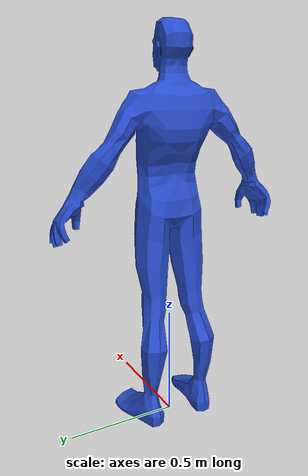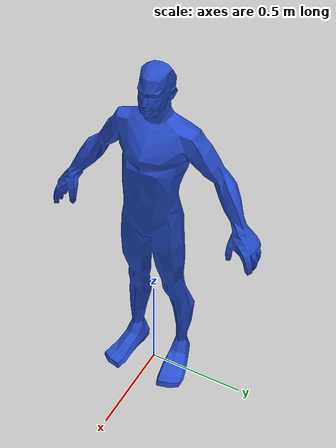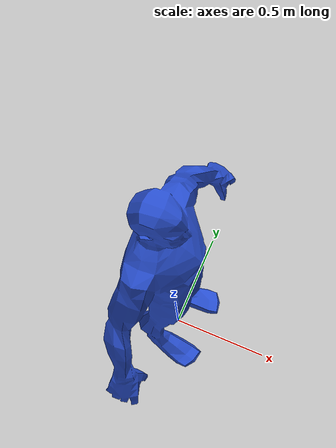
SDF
<?xml version="1.0" ?>
<sdf version="1.6">
  <model name="human">
    <pose>0 0 0.96 0 0 0</pose>
    <static>true</static>
    <link name="link">
      <collision name="collision">
        <pose>0 0 0 0 0 1.57079632679</pose>
        <geometry>
          <mesh>
            <uri>model://human/meshes/body.dae</uri>
          </mesh>
        </geometry>
      </collision>
      <visual name="visual">
        <pose>0 0 0 0 0 1.57079632679</pose>
        <geometry>
          <mesh>
            <uri>model://human/meshes/body.dae</uri>
          </mesh>
        </geometry>
        <material>
            <script>
              <name>Gazebo/Blue</name>
              <uri>file://media/materials/scripts/gazebo.material</uri>
            </script>
          </material>
      </visual>
    </link>
  </model>
</sdf>
